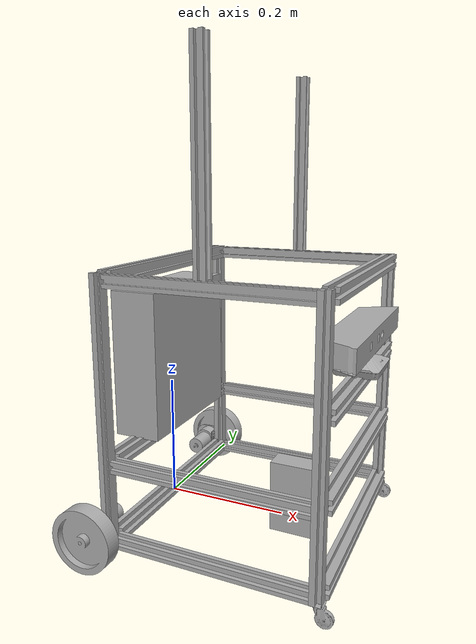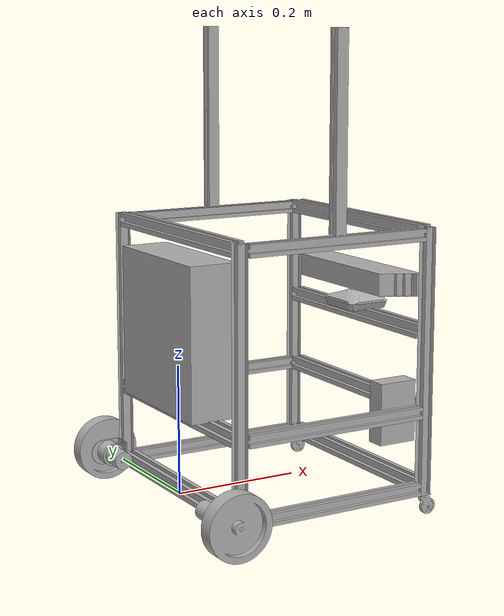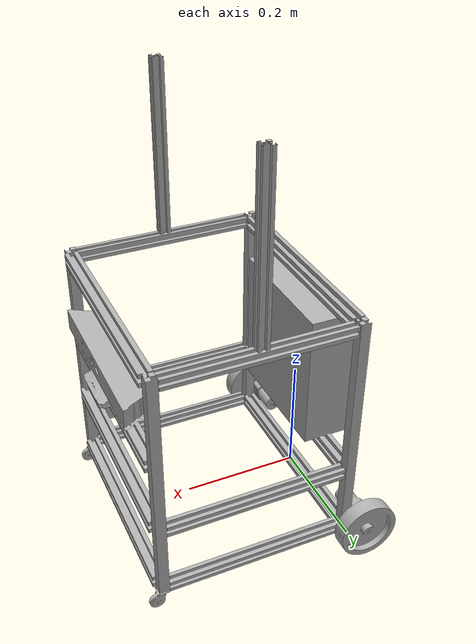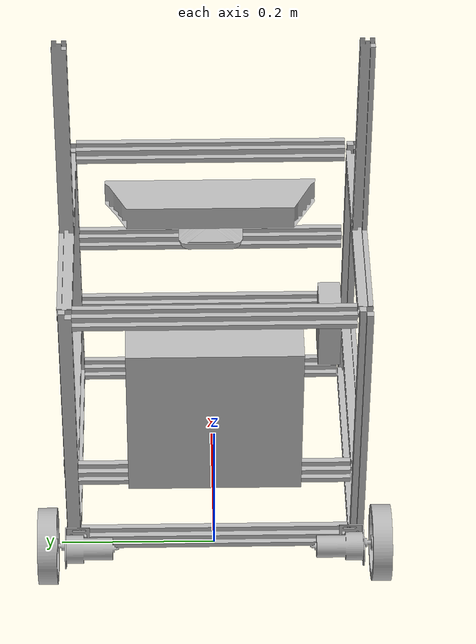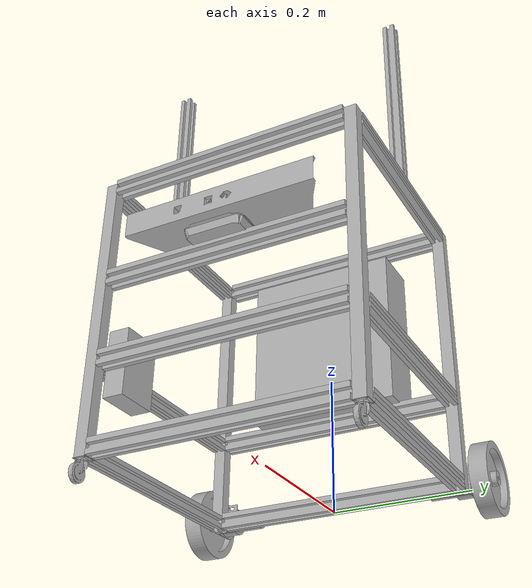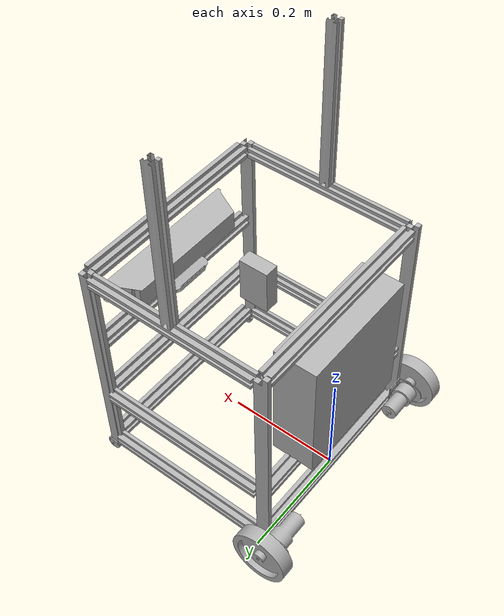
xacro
<?xml version="1.0" ?>
<robot name="ros_asv" xmlns:xacro="http://www.ros.org/wiki/xacro">

<xacro:include filename="$(find ros_asv_description)/urdf/materials.xacro" />
<xacro:include filename="$(find ros_asv_description)/urdf/ros_asv.trans" />
<xacro:include filename="$(find ros_asv_description)/urdf/ros_asv.gazebo" />
<link name="base_link">
  <inertial>
    <origin rpy="0 0 0" xyz="-3.400087959250887e-18 3.552713678800501e-17 0.009999999999999981"/>
    <mass value="0.16263116546540266"/>
    <inertia ixx="0.001667" ixy="0.0" ixz="-0.0" iyy="1.4e-05" iyz="0.0" izz="0.001667"/>
  </inertial>
  <visual>
    <origin rpy="0 0 0" xyz="0 0 0"/>
    <geometry>
      <mesh filename="package://ros_asv_description/meshes/base_link.stl" scale="0.001 0.001 0.001"/>
    </geometry>
    <material name="silver"/>
  </visual>
  <collision>
    <origin rpy="0 0 0" xyz="0 0 0"/>
    <geometry>
      <mesh filename="package://ros_asv_description/meshes/base_link.stl" scale="0.001 0.001 0.001"/>
    </geometry>
  </collision>
</link>

<link name="Back_Right_Column_1">
  <inertial>
    <origin rpy="0 0 0" xyz="6.042068319515141e-18 -0.0038999999999995705 0.20500000000000057"/>
    <mass value="0.19051079383090014"/>
    <inertia ixx="0.002677" ixy="0.0" ixz="-0.0" iyy="0.002677" iyz="-0.0" izz="1.6e-05"/>
  </inertial>
  <visual>
    <origin rpy="0 0 0" xyz="-0.0 0.1811 -0.0"/>
    <geometry>
      <mesh filename="package://ros_asv_description/meshes/Back_Right_Column_1.stl" scale="0.001 0.001 0.001"/>
    </geometry>
    <material name="silver"/>
  </visual>
  <collision>
    <origin rpy="0 0 0" xyz="-0.0 0.1811 -0.0"/>
    <geometry>
      <mesh filename="package://ros_asv_description/meshes/Back_Right_Column_1.stl" scale="0.001 0.001 0.001"/>
    </geometry>
  </collision>
</link>

<link name="Back_Left_Column_1">
  <inertial>
    <origin rpy="0 0 0" xyz="6.042068319515141e-18 0.0039000000000002366 0.20499999999999985"/>
    <mass value="0.19051079383090014"/>
    <inertia ixx="0.002677" ixy="0.0" ixz="-0.0" iyy="0.002677" iyz="-0.0" izz="1.6e-05"/>
  </inertial>
  <visual>
    <origin rpy="0 0 0" xyz="-0.0 -0.1811 0.0"/>
    <geometry>
      <mesh filename="package://ros_asv_description/meshes/Back_Left_Column_1.stl" scale="0.001 0.001 0.001"/>
    </geometry>
    <material name="silver"/>
  </visual>
  <collision>
    <origin rpy="0 0 0" xyz="-0.0 -0.1811 0.0"/>
    <geometry>
      <mesh filename="package://ros_asv_description/meshes/Back_Left_Column_1.stl" scale="0.001 0.001 0.001"/>
    </geometry>
  </collision>
</link>

<link name="Ground_Right_Beam_1">
  <inertial>
    <origin rpy="0 0 0" xyz="0.15000000000000027 2.7755575615628914e-17 3.4867941867133823e-16"/>
    <mass value="0.13939814182748805"/>
    <inertia ixx="1.2e-05" ixy="0.0" ixz="0.0" iyy="0.001051" iyz="0.0" izz="0.001051"/>
  </inertial>
  <visual>
    <origin rpy="0 0 0" xyz="-0.01 0.185 -0.01"/>
    <geometry>
      <mesh filename="package://ros_asv_description/meshes/Ground_Right_Beam_1.stl" scale="0.001 0.001 0.001"/>
    </geometry>
    <material name="silver"/>
  </visual>
  <collision>
    <origin rpy="0 0 0" xyz="-0.01 0.185 -0.01"/>
    <geometry>
      <mesh filename="package://ros_asv_description/meshes/Ground_Right_Beam_1.stl" scale="0.001 0.001 0.001"/>
    </geometry>
  </collision>
</link>

<link name="Ground_Left_Beam_1">
  <inertial>
    <origin rpy="0 0 0" xyz="0.15000000000000027 -1.3877787807814457e-16 -3.8510861166685117e-16"/>
    <mass value="0.13939814182748805"/>
    <inertia ixx="1.2e-05" ixy="0.0" ixz="0.0" iyy="0.001051" iyz="0.0" izz="0.001051"/>
  </inertial>
  <visual>
    <origin rpy="0 0 0" xyz="-0.01 -0.185 -0.01"/>
    <geometry>
      <mesh filename="package://ros_asv_description/meshes/Ground_Left_Beam_1.stl" scale="0.001 0.001 0.001"/>
    </geometry>
    <material name="silver"/>
  </visual>
  <collision>
    <origin rpy="0 0 0" xyz="-0.01 -0.185 -0.01"/>
    <geometry>
      <mesh filename="package://ros_asv_description/meshes/Ground_Left_Beam_1.stl" scale="0.001 0.001 0.001"/>
    </geometry>
  </collision>
</link>

<link name="Front_Right_Column_1">
  <inertial>
    <origin rpy="0 0 0" xyz="0.0039000000000004587 3.885780586188048e-16 0.20500000000000057"/>
    <mass value="0.19051079383090014"/>
    <inertia ixx="0.002677" ixy="0.0" ixz="-0.0" iyy="0.002677" iyz="-0.0" izz="1.6e-05"/>
  </inertial>
  <visual>
    <origin rpy="0 0 0" xyz="-0.3161 0.185 -0.0"/>
    <geometry>
      <mesh filename="package://ros_asv_description/meshes/Front_Right_Column_1.stl" scale="0.001 0.001 0.001"/>
    </geometry>
    <material name="silver"/>
  </visual>
  <collision>
    <origin rpy="0 0 0" xyz="-0.3161 0.185 -0.0"/>
    <geometry>
      <mesh filename="package://ros_asv_description/meshes/Front_Right_Column_1.stl" scale="0.001 0.001 0.001"/>
    </geometry>
  </collision>
</link>

<link name="Front_Left_Column_1">
  <inertial>
    <origin rpy="0 0 0" xyz="0.003900000000000292 2.220446049250313e-16 0.20499999999999985"/>
    <mass value="0.19051079383090014"/>
    <inertia ixx="0.002677" ixy="-0.0" ixz="-0.0" iyy="0.002677" iyz="-0.0" izz="1.6e-05"/>
  </inertial>
  <visual>
    <origin rpy="0 0 0" xyz="-0.3161 -0.185 0.0"/>
    <geometry>
      <mesh filename="package://ros_asv_description/meshes/Front_Left_Column_1.stl" scale="0.001 0.001 0.001"/>
    </geometry>
    <material name="silver"/>
  </visual>
  <collision>
    <origin rpy="0 0 0" xyz="-0.3161 -0.185 0.0"/>
    <geometry>
      <mesh filename="package://ros_asv_description/meshes/Front_Left_Column_1.stl" scale="0.001 0.001 0.001"/>
    </geometry>
  </collision>
</link>

<link name="Ground_Front_Beam_1">
  <inertial>
    <origin rpy="0 0 0" xyz="4.440892098500626e-16 -0.17499999999999968 8.673617379884035e-18"/>
    <mass value="0.16263116546540266"/>
    <inertia ixx="0.001667" ixy="0.0" ixz="0.0" iyy="1.4e-05" iyz="0.0" izz="0.001667"/>
  </inertial>
  <visual>
    <origin rpy="0 0 0" xyz="-0.32 -0.175 -0.01"/>
    <geometry>
      <mesh filename="package://ros_asv_description/meshes/Ground_Front_Beam_1.stl" scale="0.001 0.001 0.001"/>
    </geometry>
    <material name="silver"/>
  </visual>
  <collision>
    <origin rpy="0 0 0" xyz="-0.32 -0.175 -0.01"/>
    <geometry>
      <mesh filename="package://ros_asv_description/meshes/Ground_Front_Beam_1.stl" scale="0.001 0.001 0.001"/>
    </geometry>
  </collision>
</link>

<link name="First_Back_Beam_1">
  <inertial>
    <origin rpy="0 0 0" xyz="-1.1796419100005741e-18 -0.17499999999999957 1.6653345369377348e-16"/>
    <mass value="0.16263116546540266"/>
    <inertia ixx="0.001667" ixy="0.0" ixz="-0.0" iyy="1.4e-05" iyz="0.0" izz="0.001667"/>
  </inertial>
  <visual>
    <origin rpy="0 0 0" xyz="-0.0 -0.175 -0.13"/>
    <geometry>
      <mesh filename="package://ros_asv_description/meshes/First_Back_Beam_1.stl" scale="0.001 0.001 0.001"/>
    </geometry>
    <material name="silver"/>
  </visual>
  <collision>
    <origin rpy="0 0 0" xyz="-0.0 -0.175 -0.13"/>
    <geometry>
      <mesh filename="package://ros_asv_description/meshes/First_Back_Beam_1.stl" scale="0.001 0.001 0.001"/>
    </geometry>
  </collision>
</link>

<link name="First_Right_Beam_1">
  <inertial>
    <origin rpy="0 0 0" xyz="-0.14999999999999977 2.7755575615628914e-16 5.273559366969494e-16"/>
    <mass value="0.13939814182748805"/>
    <inertia ixx="1.2e-05" ixy="0.0" ixz="0.0" iyy="0.001051" iyz="0.0" izz="0.001051"/>
  </inertial>
  <visual>
    <origin rpy="0 0 0" xyz="-0.31 0.185 -0.13"/>
    <geometry>
      <mesh filename="package://ros_asv_description/meshes/First_Right_Beam_1.stl" scale="0.001 0.001 0.001"/>
    </geometry>
    <material name="silver"/>
  </visual>
  <collision>
    <origin rpy="0 0 0" xyz="-0.31 0.185 -0.13"/>
    <geometry>
      <mesh filename="package://ros_asv_description/meshes/First_Right_Beam_1.stl" scale="0.001 0.001 0.001"/>
    </geometry>
  </collision>
</link>

<link name="First_Left_Beam_1">
  <inertial>
    <origin rpy="0 0 0" xyz="-0.14999999999999947 1.1102230246251565e-16 -2.498001805406602e-16"/>
    <mass value="0.13939814182748805"/>
    <inertia ixx="1.2e-05" ixy="0.0" ixz="0.0" iyy="0.001051" iyz="0.0" izz="0.001051"/>
  </inertial>
  <visual>
    <origin rpy="0 0 0" xyz="-0.31 -0.185 -0.13"/>
    <geometry>
      <mesh filename="package://ros_asv_description/meshes/First_Left_Beam_1.stl" scale="0.001 0.001 0.001"/>
    </geometry>
    <material name="silver"/>
  </visual>
  <collision>
    <origin rpy="0 0 0" xyz="-0.31 -0.185 -0.13"/>
    <geometry>
      <mesh filename="package://ros_asv_description/meshes/First_Left_Beam_1.stl" scale="0.001 0.001 0.001"/>
    </geometry>
  </collision>
</link>

<link name="First_Forward_Beam_1">
  <inertial>
    <origin rpy="0 0 0" xyz="4.440892098500626e-16 -0.17499999999999943 1.3877787807814457e-16"/>
    <mass value="0.16263116546540266"/>
    <inertia ixx="0.001667" ixy="0.0" ixz="0.0" iyy="1.4e-05" iyz="0.0" izz="0.001667"/>
  </inertial>
  <visual>
    <origin rpy="0 0 0" xyz="-0.32 -0.175 -0.13"/>
    <geometry>
      <mesh filename="package://ros_asv_description/meshes/First_Forward_Beam_1.stl" scale="0.001 0.001 0.001"/>
    </geometry>
    <material name="silver"/>
  </visual>
  <collision>
    <origin rpy="0 0 0" xyz="-0.32 -0.175 -0.13"/>
    <geometry>
      <mesh filename="package://ros_asv_description/meshes/First_Forward_Beam_1.stl" scale="0.001 0.001 0.001"/>
    </geometry>
  </collision>
</link>

<link name="Second_Back_Beam_1">
  <inertial>
    <origin rpy="0 0 0" xyz="-1.1796419100005741e-18 -0.17499999999999913 5.551115123125783e-17"/>
    <mass value="0.16263116546540266"/>
    <inertia ixx="0.001667" ixy="0.0" ixz="-0.0" iyy="1.4e-05" iyz="0.0" izz="0.001667"/>
  </inertial>
  <visual>
    <origin rpy="0 0 0" xyz="-0.0 -0.175 -0.4"/>
    <geometry>
      <mesh filename="package://ros_asv_description/meshes/Second_Back_Beam_1.stl" scale="0.001 0.001 0.001"/>
    </geometry>
    <material name="silver"/>
  </visual>
  <collision>
    <origin rpy="0 0 0" xyz="-0.0 -0.175 -0.4"/>
    <geometry>
      <mesh filename="package://ros_asv_description/meshes/Second_Back_Beam_1.stl" scale="0.001 0.001 0.001"/>
    </geometry>
  </collision>
</link>

<link name="Second_Right_Beam_1">
  <inertial>
    <origin rpy="0 0 0" xyz="-0.14999999999999947 7.771561172376096e-16 6.106226635438361e-16"/>
    <mass value="0.13939814182748805"/>
    <inertia ixx="1.2e-05" ixy="-0.0" ixz="-0.0" iyy="0.001051" iyz="0.0" izz="0.001051"/>
  </inertial>
  <visual>
    <origin rpy="0 0 0" xyz="-0.31 0.185 -0.4"/>
    <geometry>
      <mesh filename="package://ros_asv_description/meshes/Second_Right_Beam_1.stl" scale="0.001 0.001 0.001"/>
    </geometry>
    <material name="silver"/>
  </visual>
  <collision>
    <origin rpy="0 0 0" xyz="-0.31 0.185 -0.4"/>
    <geometry>
      <mesh filename="package://ros_asv_description/meshes/Second_Right_Beam_1.stl" scale="0.001 0.001 0.001"/>
    </geometry>
  </collision>
</link>

<link name="Second_Left_Beam_1">
  <inertial>
    <origin rpy="0 0 0" xyz="-0.14999999999999952 6.106226635438361e-16 -3.885780586188048e-16"/>
    <mass value="0.13939814182748805"/>
    <inertia ixx="1.2e-05" ixy="0.0" ixz="0.0" iyy="0.001051" iyz="0.0" izz="0.001051"/>
  </inertial>
  <visual>
    <origin rpy="0 0 0" xyz="-0.31 -0.185 -0.4"/>
    <geometry>
      <mesh filename="package://ros_asv_description/meshes/Second_Left_Beam_1.stl" scale="0.001 0.001 0.001"/>
    </geometry>
    <material name="silver"/>
  </visual>
  <collision>
    <origin rpy="0 0 0" xyz="-0.31 -0.185 -0.4"/>
    <geometry>
      <mesh filename="package://ros_asv_description/meshes/Second_Left_Beam_1.stl" scale="0.001 0.001 0.001"/>
    </geometry>
  </collision>
</link>

<link name="Second_Forward_Beam_1">
  <inertial>
    <origin rpy="0 0 0" xyz="4.440892098500626e-16 -0.1749999999999991 1.1102230246251565e-16"/>
    <mass value="0.16263116546540266"/>
    <inertia ixx="0.001667" ixy="0.0" ixz="-0.0" iyy="1.4e-05" iyz="0.0" izz="0.001667"/>
  </inertial>
  <visual>
    <origin rpy="0 0 0" xyz="-0.32 -0.175 -0.4"/>
    <geometry>
      <mesh filename="package://ros_asv_description/meshes/Second_Forward_Beam_1.stl" scale="0.001 0.001 0.001"/>
    </geometry>
    <material name="silver"/>
  </visual>
  <collision>
    <origin rpy="0 0 0" xyz="-0.32 -0.175 -0.4"/>
    <geometry>
      <mesh filename="package://ros_asv_description/meshes/Second_Forward_Beam_1.stl" scale="0.001 0.001 0.001"/>
    </geometry>
  </collision>
</link>

<link name="Kinect_Right_Column_1">
  <inertial>
    <origin rpy="0 0 0" xyz="3.0531133177191805e-16 1.0547118733938987e-15 0.14500000000000074"/>
    <mass value="0.1347515370999051"/>
    <inertia ixx="0.00095" ixy="0.0" ixz="-0.0" iyy="0.00095" iyz="-0.0" izz="1.1e-05"/>
  </inertial>
  <visual>
    <origin rpy="0 0 0" xyz="-0.16 0.185 -0.41"/>
    <geometry>
      <mesh filename="package://ros_asv_description/meshes/Kinect_Right_Column_1.stl" scale="0.001 0.001 0.001"/>
    </geometry>
    <material name="silver"/>
  </visual>
  <collision>
    <origin rpy="0 0 0" xyz="-0.16 0.185 -0.41"/>
    <geometry>
      <mesh filename="package://ros_asv_description/meshes/Kinect_Right_Column_1.stl" scale="0.001 0.001 0.001"/>
    </geometry>
  </collision>
</link>

<link name="Kinect_Left_Column_1">
  <inertial>
    <origin rpy="0 0 0" xyz="2.7755575615628914e-16 8.604228440844963e-16 0.14500000000000018"/>
    <mass value="0.1347515370999051"/>
    <inertia ixx="0.00095" ixy="0.0" ixz="0.0" iyy="0.00095" iyz="-0.0" izz="1.1e-05"/>
  </inertial>
  <visual>
    <origin rpy="0 0 0" xyz="-0.16 -0.185 -0.41"/>
    <geometry>
      <mesh filename="package://ros_asv_description/meshes/Kinect_Left_Column_1.stl" scale="0.001 0.001 0.001"/>
    </geometry>
    <material name="silver"/>
  </visual>
  <collision>
    <origin rpy="0 0 0" xyz="-0.16 -0.185 -0.41"/>
    <geometry>
      <mesh filename="package://ros_asv_description/meshes/Kinect_Left_Column_1.stl" scale="0.001 0.001 0.001"/>
    </geometry>
  </collision>
</link>

<link name="Kinect_Beam_1">
  <inertial>
    <origin rpy="0 0 0" xyz="0.3200000000000003 2.664535259100376e-16 0.5000000000000003"/>
    <mass value="0.16263116546540266"/>
    <inertia ixx="0.001667" ixy="0.0" ixz="-0.0" iyy="1.4e-05" iyz="0.0" izz="0.001667"/>
  </inertial>
  <visual>
    <origin rpy="0 0 0" xyz="-0.16 -0.175 -0.69"/>
    <geometry>
      <mesh filename="package://ros_asv_description/meshes/Kinect_Beam_1.stl" scale="0.001 0.001 0.001"/>
    </geometry>
    <material name="silver"/>
  </visual>
  <collision>
    <origin rpy="0 0 0" xyz="-0.16 -0.175 -0.69"/>
    <geometry>
      <mesh filename="package://ros_asv_description/meshes/Kinect_Beam_1.stl" scale="0.001 0.001 0.001"/>
    </geometry>
  </collision>
</link>

<link name="Left_Motor_Mount_1">
  <inertial>
    <origin rpy="0 0 0" xyz="-0.014032658175056207 0.008729043605446019 5.821659598857776e-06"/>
    <mass value="0.02648465354976086"/>
    <inertia ixx="6e-06" ixy="2e-06" ixz="-0.0" iyy="1e-05" iyz="0.0" izz="9e-06"/>
  </inertial>
  <visual>
    <origin rpy="0 0 0" xyz="0.01 -0.179 -0.02"/>
    <geometry>
      <mesh filename="package://ros_asv_description/meshes/Left_Motor_Mount_1.stl" scale="0.001 0.001 0.001"/>
    </geometry>
    <material name="silver"/>
  </visual>
  <collision>
    <origin rpy="0 0 0" xyz="0.01 -0.179 -0.02"/>
    <geometry>
      <mesh filename="package://ros_asv_description/meshes/Left_Motor_Mount_1.stl" scale="0.001 0.001 0.001"/>
    </geometry>
  </collision>
</link>

<link name="Right_Motor_Mount_1">
  <inertial>
    <origin rpy="0 0 0" xyz="-0.014032658175056075 -0.008729043605446046 -5.821659598889001e-06"/>
    <mass value="0.02648465354976086"/>
    <inertia ixx="6e-06" ixy="-2e-06" ixz="0.0" iyy="1e-05" iyz="0.0" izz="9e-06"/>
  </inertial>
  <visual>
    <origin rpy="0 0 0" xyz="0.01 0.179 -0.02"/>
    <geometry>
      <mesh filename="package://ros_asv_description/meshes/Right_Motor_Mount_1.stl" scale="0.001 0.001 0.001"/>
    </geometry>
    <material name="silver"/>
  </visual>
  <collision>
    <origin rpy="0 0 0" xyz="0.01 0.179 -0.02"/>
    <geometry>
      <mesh filename="package://ros_asv_description/meshes/Right_Motor_Mount_1.stl" scale="0.001 0.001 0.001"/>
    </geometry>
  </collision>
</link>

<link name="Left_Motor_1">
  <inertial>
    <origin rpy="0 0 0" xyz="0.00017904992231521782 -0.025568444538905805 -1.49002834376466e-10"/>
    <mass value="0.13749894717958394"/>
    <inertia ixx="5.8e-05" ixy="-1e-06" ixz="-0.0" iyy="1.8e-05" iyz="-0.0" izz="5.8e-05"/>
  </inertial>
  <visual>
    <origin rpy="0 0 0" xyz="0.03 -0.19325 -0.02"/>
    <geometry>
      <mesh filename="package://ros_asv_description/meshes/Left_Motor_1.stl" scale="0.001 0.001 0.001"/>
    </geometry>
    <material name="silver"/>
  </visual>
  <collision>
    <origin rpy="0 0 0" xyz="0.03 -0.19325 -0.02"/>
    <geometry>
      <mesh filename="package://ros_asv_description/meshes/Left_Motor_1.stl" scale="0.001 0.001 0.001"/>
    </geometry>
  </collision>
</link>

<link name="Right_Motor_1">
  <inertial>
    <origin rpy="0 0 0" xyz="0.0001790499223154017 0.02556844453890575 1.4900279968199648e-10"/>
    <mass value="0.13749894717958394"/>
    <inertia ixx="5.8e-05" ixy="1e-06" ixz="0.0" iyy="1.8e-05" iyz="-0.0" izz="5.8e-05"/>
  </inertial>
  <visual>
    <origin rpy="0 0 0" xyz="0.03 0.19325 -0.02"/>
    <geometry>
      <mesh filename="package://ros_asv_description/meshes/Right_Motor_1.stl" scale="0.001 0.001 0.001"/>
    </geometry>
    <material name="silver"/>
  </visual>
  <collision>
    <origin rpy="0 0 0" xyz="0.03 0.19325 -0.02"/>
    <geometry>
      <mesh filename="package://ros_asv_description/meshes/Right_Motor_1.stl" scale="0.001 0.001 0.001"/>
    </geometry>
  </collision>
</link>

<link name="Left_Wheel_1">
  <inertial>
    <origin rpy="0 0 0" xyz="8.94899050696285e-11 -0.012500000000000122 -1.4901210473872162e-10"/>
    <mass value="0.0942972596919878"/>
    <inertia ixx="8.1e-05" ixy="0.0" ixz="-0.0" iyy="0.000154" iyz="-0.0" izz="8.1e-05"/>
  </inertial>
  <visual>
    <origin rpy="0 0 0" xyz="0.024 -0.22955 -0.02"/>
    <geometry>
      <mesh filename="package://ros_asv_description/meshes/Left_Wheel_1.stl" scale="0.001 0.001 0.001"/>
    </geometry>
    <material name="silver"/>
  </visual>
  <collision>
    <origin rpy="0 0 0" xyz="0.024 -0.22955 -0.02"/>
    <geometry>
      <mesh filename="package://ros_asv_description/meshes/Left_Wheel_1.stl" scale="0.001 0.001 0.001"/>
    </geometry>
  </collision>
</link>

<link name="Right_Wheel_1">
  <inertial>
    <origin rpy="0 0 0" xyz="8.949012017533953e-11 0.012500000000000122 1.4901202494144172e-10"/>
    <mass value="0.0942972596919878"/>
    <inertia ixx="8.1e-05" ixy="0.0" ixz="-0.0" iyy="0.000154" iyz="-0.0" izz="8.1e-05"/>
  </inertial>
  <visual>
    <origin rpy="0 0 0" xyz="0.024 0.22955 -0.02"/>
    <geometry>
      <mesh filename="package://ros_asv_description/meshes/Right_Wheel_1.stl" scale="0.001 0.001 0.001"/>
    </geometry>
    <material name="silver"/>
  </visual>
  <collision>
    <origin rpy="0 0 0" xyz="0.024 0.22955 -0.02"/>
    <geometry>
      <mesh filename="package://ros_asv_description/meshes/Right_Wheel_1.stl" scale="0.001 0.001 0.001"/>
    </geometry>
  </collision>
</link>

<link name="Right_Castor_1">
  <inertial>
    <origin rpy="0 0 0" xyz="0.007066450457602125 -3.875999797203766e-06 -0.01610861149067353"/>
    <mass value="0.022774017737249585"/>
    <inertia ixx="2e-06" ixy="0.0" ixz="1e-06" iyy="3e-06" iyz="-0.0" izz="1e-06"/>
  </inertial>
  <visual>
    <origin rpy="0 0 0" xyz="-0.32 0.185 0.000375"/>
    <geometry>
      <mesh filename="package://ros_asv_description/meshes/Right_Castor_1.stl" scale="0.001 0.001 0.001"/>
    </geometry>
    <material name="silver"/>
  </visual>
  <collision>
    <origin rpy="0 0 0" xyz="-0.32 0.185 0.000375"/>
    <geometry>
      <mesh filename="package://ros_asv_description/meshes/Right_Castor_1.stl" scale="0.001 0.001 0.001"/>
    </geometry>
  </collision>
</link>

<link name="Left_Castor_1">
  <inertial>
    <origin rpy="0 0 0" xyz="0.007066450457601681 -3.875999796704166e-06 -0.016108611490674277"/>
    <mass value="0.022774017737249585"/>
    <inertia ixx="2e-06" ixy="0.0" ixz="1e-06" iyy="3e-06" iyz="-0.0" izz="1e-06"/>
  </inertial>
  <visual>
    <origin rpy="0 0 0" xyz="-0.32 -0.185 0.000375"/>
    <geometry>
      <mesh filename="package://ros_asv_description/meshes/Left_Castor_1.stl" scale="0.001 0.001 0.001"/>
    </geometry>
    <material name="silver"/>
  </visual>
  <collision>
    <origin rpy="0 0 0" xyz="-0.32 -0.185 0.000375"/>
    <geometry>
      <mesh filename="package://ros_asv_description/meshes/Left_Castor_1.stl" scale="0.001 0.001 0.001"/>
    </geometry>
  </collision>
</link>

<link name="RPi_Case_1">
  <inertial>
    <origin rpy="0 0 0" xyz="-0.031000000000000916 0.014999999999998598 5.273559366969494e-16"/>
    <mass value="0.18730200000000002"/>
    <inertia ixx="0.000155" ixy="-0.0" ixz="0.0" iyy="0.000201" iyz="0.0" izz="7.4e-05"/>
  </inertial>
  <visual>
    <origin rpy="0 0 0" xyz="-0.31 0.175 -0.13"/>
    <geometry>
      <mesh filename="package://ros_asv_description/meshes/RPi_Case_1.stl" scale="0.001 0.001 0.001"/>
    </geometry>
    <material name="silver"/>
  </visual>
  <collision>
    <origin rpy="0 0 0" xyz="-0.31 0.175 -0.13"/>
    <geometry>
      <mesh filename="package://ros_asv_description/meshes/RPi_Case_1.stl" scale="0.001 0.001 0.001"/>
    </geometry>
  </collision>
</link>

<link name="PSU_1">
  <inertial>
    <origin rpy="0 0 0" xyz="2.3980817331903383e-15 6.67130239939695e-16 0.1150000000000001"/>
    <mass value="3.5672999999999995"/>
    <inertia ixx="0.030114" ixy="-0.0" ixz="-0.0" iyy="0.017398" iyz="-0.0" izz="0.01606"/>
  </inertial>
  <visual>
    <origin rpy="0 0 0" xyz="0.0 -0.0 -0.14"/>
    <geometry>
      <mesh filename="package://ros_asv_description/meshes/PSU_1.stl" scale="0.001 0.001 0.001"/>
    </geometry>
    <material name="silver"/>
  </visual>
  <collision>
    <origin rpy="0 0 0" xyz="0.0 -0.0 -0.14"/>
    <geometry>
      <mesh filename="package://ros_asv_description/meshes/PSU_1.stl" scale="0.001 0.001 0.001"/>
    </geometry>
  </collision>
</link>

<link name="Kinect_Base_1">
  <inertial>
    <origin rpy="0 0 0" xyz="-4.4982423286210604e-07 -4.790169603699464e-08 0.009930080169777589"/>
    <mass value="0.08687629147944863"/>
    <inertia ixx="4.5e-05" ixy="0.0" ixz="0.0" iyy="3.2e-05" iyz="-0.0" izz="7.2e-05"/>
  </inertial>
  <visual>
    <origin rpy="0 0 0" xyz="-0.16 -0.0 -0.7"/>
    <geometry>
      <mesh filename="package://ros_asv_description/meshes/Kinect_Base_1.stl" scale="0.001 0.001 0.001"/>
    </geometry>
    <material name="silver"/>
  </visual>
  <collision>
    <origin rpy="0 0 0" xyz="-0.16 -0.0 -0.7"/>
    <geometry>
      <mesh filename="package://ros_asv_description/meshes/Kinect_Base_1.stl" scale="0.001 0.001 0.001"/>
    </geometry>
  </collision>
</link>

<link name="Kinect_Sensor_1">
  <inertial>
    <origin rpy="0 0 0" xyz="-0.0014152214951219932 0.0003335256404732938 0.0318110091899082"/>
    <mass value="0.46962835372194695"/>
    <inertia ixx="0.002402" ixy="-2e-06" ixz="0.0" iyy="0.000194" iyz="-0.0" izz="0.002479"/>
  </inertial>
  <visual>
    <origin rpy="0 0 0" xyz="-0.16 -0.0 -0.7215"/>
    <geometry>
      <mesh filename="package://ros_asv_description/meshes/Kinect_Sensor_1.stl" scale="0.001 0.001 0.001"/>
    </geometry>
    <material name="silver"/>
  </visual>
  <collision>
    <origin rpy="0 0 0" xyz="-0.16 -0.0 -0.7215"/>
    <geometry>
      <mesh filename="package://ros_asv_description/meshes/Kinect_Sensor_1.stl" scale="0.001 0.001 0.001"/>
    </geometry>
  </collision>
</link>

<joint name="Rigid1" type="fixed">
  <origin rpy="0 0 0" xyz="0.0 -0.1811 0.0"/>
  <parent link="base_link"/>
  <child link="Back_Right_Column_1"/>
</joint>

<joint name="Rigid2" type="fixed">
  <origin rpy="0 0 0" xyz="0.0 0.1811 0.0"/>
  <parent link="base_link"/>
  <child link="Back_Left_Column_1"/>
</joint>

<joint name="Rigid3" type="fixed">
  <origin rpy="0 0 0" xyz="0.01 -0.0039 0.01"/>
  <parent link="Back_Right_Column_1"/>
  <child link="Ground_Right_Beam_1"/>
</joint>

<joint name="Rigid4" type="fixed">
  <origin rpy="0 0 0" xyz="0.01 0.0039 0.01"/>
  <parent link="Back_Left_Column_1"/>
  <child link="Ground_Left_Beam_1"/>
</joint>

<joint name="Rigid5" type="fixed">
  <origin rpy="0 0 0" xyz="0.3061 0.0 -0.01"/>
  <parent link="Ground_Right_Beam_1"/>
  <child link="Front_Right_Column_1"/>
</joint>

<joint name="Rigid6" type="fixed">
  <origin rpy="0 0 0" xyz="0.3061 0.0 -0.01"/>
  <parent link="Ground_Left_Beam_1"/>
  <child link="Front_Left_Column_1"/>
</joint>

<joint name="Rigid8" type="fixed">
  <origin rpy="0 0 0" xyz="0.0039 -0.01 0.01"/>
  <parent link="Front_Left_Column_1"/>
  <child link="Ground_Front_Beam_1"/>
</joint>

<joint name="Rigid10" type="fixed">
  <origin rpy="0 0 0" xyz="0.0 -0.0061 0.13"/>
  <parent link="Back_Left_Column_1"/>
  <child link="First_Back_Beam_1"/>
</joint>

<joint name="Rigid13" type="fixed">
  <origin rpy="0 0 0" xyz="-0.0061 0.0 0.13"/>
  <parent link="Front_Right_Column_1"/>
  <child link="First_Right_Beam_1"/>
</joint>

<joint name="Rigid15" type="fixed">
  <origin rpy="0 0 0" xyz="-0.0061 0.0 0.13"/>
  <parent link="Front_Left_Column_1"/>
  <child link="First_Left_Beam_1"/>
</joint>

<joint name="Rigid17" type="fixed">
  <origin rpy="0 0 0" xyz="0.0039 -0.01 0.13"/>
  <parent link="Front_Left_Column_1"/>
  <child link="First_Forward_Beam_1"/>
</joint>

<joint name="Rigid19" type="fixed">
  <origin rpy="0 0 0" xyz="0.0 -0.0061 0.4"/>
  <parent link="Back_Left_Column_1"/>
  <child link="Second_Back_Beam_1"/>
</joint>

<joint name="Rigid21" type="fixed">
  <origin rpy="0 0 0" xyz="-0.0061 0.0 0.4"/>
  <parent link="Front_Right_Column_1"/>
  <child link="Second_Right_Beam_1"/>
</joint>

<joint name="Rigid23" type="fixed">
  <origin rpy="0 0 0" xyz="-0.0061 0.0 0.4"/>
  <parent link="Front_Left_Column_1"/>
  <child link="Second_Left_Beam_1"/>
</joint>

<joint name="Rigid25" type="fixed">
  <origin rpy="0 0 0" xyz="0.0039 -0.01 0.4"/>
  <parent link="Front_Left_Column_1"/>
  <child link="Second_Forward_Beam_1"/>
</joint>

<joint name="Rigid26" type="fixed">
  <origin rpy="0 0 0" xyz="-0.15 0.0 0.01"/>
  <parent link="Second_Right_Beam_1"/>
  <child link="Kinect_Right_Column_1"/>
</joint>

<joint name="Rigid27" type="fixed">
  <origin rpy="0 0 0" xyz="-0.15 0.0 0.01"/>
  <parent link="Second_Left_Beam_1"/>
  <child link="Kinect_Left_Column_1"/>
</joint>

<joint name="Rigid30" type="fixed">
  <origin rpy="0 0 0" xyz="0.0039 -0.01 0.25"/>
  <parent link="Front_Left_Column_1"/>
  <child link="Kinect_Beam_1"/>
</joint>

<joint name="Rigid31" type="fixed">
  <origin rpy="0 0 0" xyz="-0.01 -0.0021 0.02"/>
  <parent link="Back_Left_Column_1"/>
  <child link="Left_Motor_Mount_1"/>
</joint>

<joint name="Rigid32" type="fixed">
  <origin rpy="0 0 0" xyz="-0.01 0.0021 0.02"/>
  <parent link="Back_Right_Column_1"/>
  <child link="Right_Motor_Mount_1"/>
</joint>

<joint name="Rigid33" type="fixed">
  <origin rpy="0 0 0" xyz="-0.02 0.01425 0.0"/>
  <parent link="Left_Motor_Mount_1"/>
  <child link="Left_Motor_1"/>
</joint>

<joint name="Rigid34" type="fixed">
  <origin rpy="0 0 0" xyz="-0.02 -0.01425 0.0"/>
  <parent link="Right_Motor_Mount_1"/>
  <child link="Right_Motor_1"/>
</joint>

<joint name="Left_Rev" type="continuous">
  <origin rpy="0 0 0" xyz="0.006 0.0363 0.0"/>
  <parent link="Left_Motor_1"/>
  <child link="Left_Wheel_1"/>
  <axis xyz="0.0 1.0 -0.0"/>
</joint>

<joint name="Right_Rev" type="continuous">
  <origin rpy="0 0 0" xyz="0.006 -0.0363 0.0"/>
  <parent link="Right_Motor_1"/>
  <child link="Right_Wheel_1"/>
  <axis xyz="0.0 -1.0 0.0"/>
</joint>

<joint name="Rigid37" type="fixed">
  <origin rpy="0 0 0" xyz="0.0039 0.0 -0.000375"/>
  <parent link="Front_Right_Column_1"/>
  <child link="Right_Castor_1"/>
</joint>

<joint name="Rigid38" type="fixed">
  <origin rpy="0 0 0" xyz="0.0039 0.0 -0.000375"/>
  <parent link="Front_Left_Column_1"/>
  <child link="Left_Castor_1"/>
</joint>

<joint name="Rigid39" type="fixed">
  <origin rpy="0 0 0" xyz="0.0 0.01 0.0"/>
  <parent link="First_Right_Beam_1"/>
  <child link="RPi_Case_1"/>
</joint>

<joint name="Rigid40" type="fixed">
  <origin rpy="0 0 0" xyz="-0.0 -0.175 0.01"/>
  <parent link="First_Back_Beam_1"/>
  <child link="PSU_1"/>
</joint>

<joint name="Rigid41" type="fixed">
  <origin rpy="0 0 0" xyz="0.0 -0.175 0.01"/>
  <parent link="Kinect_Beam_1"/>
  <child link="Kinect_Base_1"/>
</joint>

<joint name="Rigid42" type="fixed">
  <origin rpy="0 0 0" xyz="0.0 0.0 0.0215"/>
  <parent link="Kinect_Base_1"/>
  <child link="Kinect_Sensor_1"/>
</joint>

</robot>

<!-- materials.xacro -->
<robot name="ros_asv" xmlns:xacro="http://www.ros.org/wiki/xacro" >

<material name="silver">
  <color rgba="0.700 0.700 0.700 1.000"/>
</material>

</robot>

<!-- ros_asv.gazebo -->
<robot name="ros_asv" xmlns:xacro="http://www.ros.org/wiki/xacro" >

<xacro:property name="body_color" value="Gazebo/Silver" />

<gazebo>
  <plugin filename="libgazebo_ros_control.so" name="control"/>
</gazebo>
<gazebo reference="base_link">
  <material>${body_color}</material>
  <mu1>0.2</mu1>
  <mu2>0.2</mu2>
  <selfCollide>true</selfCollide>
  <gravity>true</gravity>
</gazebo>

<gazebo reference="Back_Right_Column_1">
  <material>${body_color}</material>
  <mu1>0.2</mu1>
  <mu2>0.2</mu2>
  <selfCollide>true</selfCollide>
</gazebo>

<gazebo reference="Back_Left_Column_1">
  <material>${body_color}</material>
  <mu1>0.2</mu1>
  <mu2>0.2</mu2>
  <selfCollide>true</selfCollide>
</gazebo>

<gazebo reference="Ground_Right_Beam_1">
  <material>${body_color}</material>
  <mu1>0.2</mu1>
  <mu2>0.2</mu2>
  <selfCollide>true</selfCollide>
</gazebo>

<gazebo reference="Ground_Left_Beam_1">
  <material>${body_color}</material>
  <mu1>0.2</mu1>
  <mu2>0.2</mu2>
  <selfCollide>true</selfCollide>
</gazebo>

<gazebo reference="Front_Right_Column_1">
  <material>${body_color}</material>
  <mu1>0.2</mu1>
  <mu2>0.2</mu2>
  <selfCollide>true</selfCollide>
</gazebo>

<gazebo reference="Front_Left_Column_1">
  <material>${body_color}</material>
  <mu1>0.2</mu1>
  <mu2>0.2</mu2>
  <selfCollide>true</selfCollide>
</gazebo>

<gazebo reference="Ground_Front_Beam_1">
  <material>${body_color}</material>
  <mu1>0.2</mu1>
  <mu2>0.2</mu2>
  <selfCollide>true</selfCollide>
</gazebo>

<gazebo reference="Ground_Front_Beam_1">
  <material>${body_color}</material>
  <mu1>0.2</mu1>
  <mu2>0.2</mu2>
  <selfCollide>true</selfCollide>
</gazebo>

<gazebo reference="First_Back_Beam_1">
  <material>${body_color}</material>
  <mu1>0.2</mu1>
  <mu2>0.2</mu2>
  <selfCollide>true</selfCollide>
</gazebo>

<gazebo reference="First_Back_Beam_1">
  <material>${body_color}</material>
  <mu1>0.2</mu1>
  <mu2>0.2</mu2>
  <selfCollide>true</selfCollide>
</gazebo>

<gazebo reference="First_Right_Beam_1">
  <material>${body_color}</material>
  <mu1>0.2</mu1>
  <mu2>0.2</mu2>
  <selfCollide>true</selfCollide>
</gazebo>

<gazebo reference="First_Right_Beam_1">
  <material>${body_color}</material>
  <mu1>0.2</mu1>
  <mu2>0.2</mu2>
  <selfCollide>true</selfCollide>
</gazebo>

<gazebo reference="First_Left_Beam_1">
  <material>${body_color}</material>
  <mu1>0.2</mu1>
  <mu2>0.2</mu2>
  <selfCollide>true</selfCollide>
</gazebo>

<gazebo reference="First_Left_Beam_1">
  <material>${body_color}</material>
  <mu1>0.2</mu1>
  <mu2>0.2</mu2>
  <selfCollide>true</selfCollide>
</gazebo>

<gazebo reference="First_Forward_Beam_1">
  <material>${body_color}</material>
  <mu1>0.2</mu1>
  <mu2>0.2</mu2>
  <selfCollide>true</selfCollide>
</gazebo>

<gazebo reference="First_Forward_Beam_1">
  <material>${body_color}</material>
  <mu1>0.2</mu1>
  <mu2>0.2</mu2>
  <selfCollide>true</selfCollide>
</gazebo>

<gazebo reference="Second_Back_Beam_1">
  <material>${body_color}</material>
  <mu1>0.2</mu1>
  <mu2>0.2</mu2>
  <selfCollide>true</selfCollide>
</gazebo>

<gazebo reference="Second_Back_Beam_1">
  <material>${body_color}</material>
  <mu1>0.2</mu1>
  <mu2>0.2</mu2>
  <selfCollide>true</selfCollide>
</gazebo>

<gazebo reference="Second_Right_Beam_1">
  <material>${body_color}</material>
  <mu1>0.2</mu1>
  <mu2>0.2</mu2>
  <selfCollide>true</selfCollide>
</gazebo>

<gazebo reference="Second_Right_Beam_1">
  <material>${body_color}</material>
  <mu1>0.2</mu1>
  <mu2>0.2</mu2>
  <selfCollide>true</selfCollide>
</gazebo>

<gazebo reference="Second_Left_Beam_1">
  <material>${body_color}</material>
  <mu1>0.2</mu1>
  <mu2>0.2</mu2>
  <selfCollide>true</selfCollide>
</gazebo>

<gazebo reference="Second_Left_Beam_1">
  <material>${body_color}</material>
  <mu1>0.2</mu1>
  <mu2>0.2</mu2>
  <selfCollide>true</selfCollide>
</gazebo>

<gazebo reference="Second_Forward_Beam_1">
  <material>${body_color}</material>
  <mu1>0.2</mu1>
  <mu2>0.2</mu2>
  <selfCollide>true</selfCollide>
</gazebo>

<gazebo reference="Second_Forward_Beam_1">
  <material>${body_color}</material>
  <mu1>0.2</mu1>
  <mu2>0.2</mu2>
  <selfCollide>true</selfCollide>
</gazebo>

<gazebo reference="Kinect_Right_Column_1">
  <material>${body_color}</material>
  <mu1>0.2</mu1>
  <mu2>0.2</mu2>
  <selfCollide>true</selfCollide>
</gazebo>

<gazebo reference="Kinect_Left_Column_1">
  <material>${body_color}</material>
  <mu1>0.2</mu1>
  <mu2>0.2</mu2>
  <selfCollide>true</selfCollide>
</gazebo>

<gazebo reference="Kinect_Beam_1">
  <material>${body_color}</material>
  <mu1>0.2</mu1>
  <mu2>0.2</mu2>
  <selfCollide>true</selfCollide>
</gazebo>

<gazebo reference="Kinect_Beam_1">
  <material>${body_color}</material>
  <mu1>0.2</mu1>
  <mu2>0.2</mu2>
  <selfCollide>true</selfCollide>
</gazebo>

<gazebo reference="Left_Motor_Mount_1">
  <material>${body_color}</material>
  <mu1>0.2</mu1>
  <mu2>0.2</mu2>
  <selfCollide>true</selfCollide>
</gazebo>

<gazebo reference="Right_Motor_Mount_1">
  <material>${body_color}</material>
  <mu1>0.2</mu1>
  <mu2>0.2</mu2>
  <selfCollide>true</selfCollide>
</gazebo>

<gazebo reference="Left_Motor_1">
  <material>${body_color}</material>
  <mu1>0.2</mu1>
  <mu2>0.2</mu2>
  <selfCollide>true</selfCollide>
</gazebo>

<gazebo reference="Right_Motor_1">
  <material>${body_color}</material>
  <mu1>0.2</mu1>
  <mu2>0.2</mu2>
  <selfCollide>true</selfCollide>
</gazebo>

<gazebo reference="Left_Wheel_1">
  <material>${body_color}</material>
  <mu1>0.2</mu1>
  <mu2>0.2</mu2>
  <selfCollide>true</selfCollide>
</gazebo>

<gazebo reference="Right_Wheel_1">
  <material>${body_color}</material>
  <mu1>0.2</mu1>
  <mu2>0.2</mu2>
  <selfCollide>true</selfCollide>
</gazebo>

<gazebo reference="Right_Castor_1">
  <material>${body_color}</material>
  <mu1>0.2</mu1>
  <mu2>0.2</mu2>
  <selfCollide>true</selfCollide>
</gazebo>

<gazebo reference="Left_Castor_1">
  <material>${body_color}</material>
  <mu1>0.2</mu1>
  <mu2>0.2</mu2>
  <selfCollide>true</selfCollide>
</gazebo>

<gazebo reference="RPi_Case_1">
  <material>${body_color}</material>
  <mu1>0.2</mu1>
  <mu2>0.2</mu2>
  <selfCollide>true</selfCollide>
</gazebo>

<gazebo reference="PSU_1">
  <material>${body_color}</material>
  <mu1>0.2</mu1>
  <mu2>0.2</mu2>
  <selfCollide>true</selfCollide>
</gazebo>

<gazebo reference="Kinect_Base_1">
  <material>${body_color}</material>
  <mu1>0.2</mu1>
  <mu2>0.2</mu2>
  <selfCollide>true</selfCollide>
</gazebo>

<gazebo reference="Kinect_Sensor_1">
  <material>${body_color}</material>
  <mu1>0.2</mu1>
  <mu2>0.2</mu2>
  <selfCollide>true</selfCollide>
</gazebo>

</robot>
